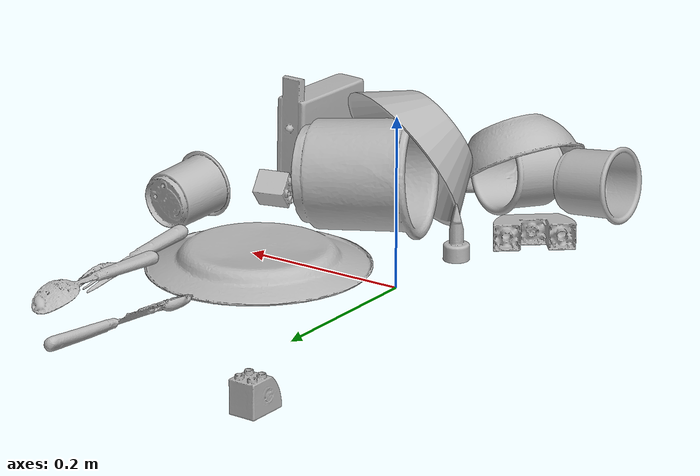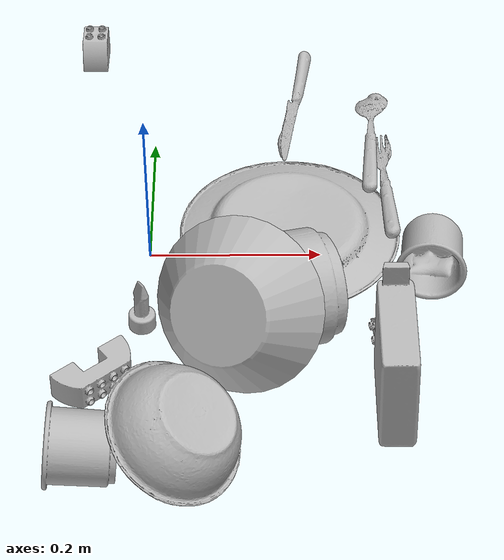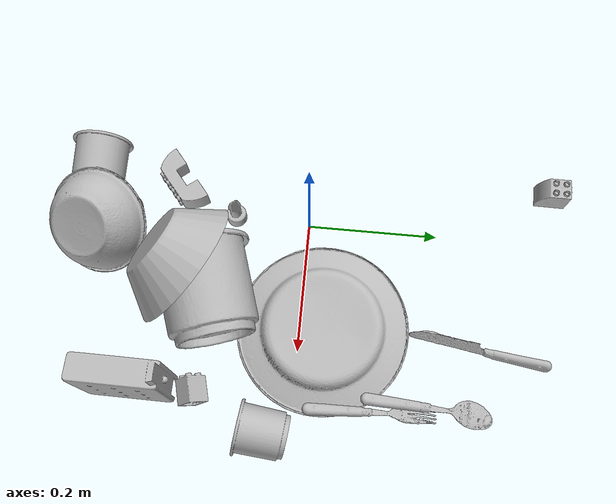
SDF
<sdf version="1.4">
  <world name="default">
    <light name="light1" type="point">
      <pose>0 0 1 0 0 0</pose>
      <diffuse>3 3 3 1</diffuse>
      <specular>3 3 3 1</specular>
    </light>
    <light name="light2" type="point">
      <pose>0 0.5 2 0 0 0</pose>
      <diffuse>1 1 1 1</diffuse>
      <specular>1 1 1 1</specular>
    </light>
    <light name="light3" type="point">
      <pose>0 0.5 2 0 0 0</pose>
      <diffuse>3 3 3 1</diffuse>
      <specular>3 3 3 1</specular>
    </light>
    <scene>
      <ambient>0.7 0.7 0.7</ambient>
    </scene>
    <model name="plate1">
      <link name="link_plate1">
        <collision name="default">
          <geometry>
            <mesh>
              <uri>model://plate/collision_meshes/collision.obj</uri>
              <scale>1.0 1.0 1.0</scale>
            </mesh>
          </geometry>
          <surface>
            <friction>
              <ode>
                <mu>0.5</mu>
                <mu2>0.5</mu2>
              </ode>
            </friction>
          <contact>
        <ode>
            <max_vel>0</max_vel>
            <min_depth>0.0001</min_depth>
            <kp>1e8</kp>
        </ode>
    </contact></surface>
        </collision>
        <visual name="default">
          <geometry>
            <mesh>
              <uri>model://plate/visual_meshes/visual.dae</uri>
              <scale>1.0 1.0 1.0</scale>
            </mesh>
          </geometry>
        </visual>
        <inertial>
          <mass>0.17760059237480164</mass>
          <pose>-0.0006044625188224018 0.0002782586379908025 -0.0010561981471255422 0.0022187804018266454 -0.0032254852757079067 0.45261158451631034</pose>
          <inertia>
            <ixx>0.0008308187</ixx>
            <iyy>0.0008228725</iyy>
            <izz>0.0016249575</izz>
            <ixy>0</ixy>
            <ixz>0</ixz>
            <iyz>0</iyz>
          </inertia>
        </inertial>
      </link>
      <pose>0.16431637108325958 0.03511306270956993 0.013448568992316723 3.141423156525756 -0.003160490038866525 1.1099511652728888</pose>
    </model>
    <model name="cup1">
      <link name="link_cup1">
        <collision name="default">
          <geometry>
            <mesh>
              <uri>model://e_cups/collision_meshes/collision.obj</uri>
              <scale>2.0 2.0 2.0</scale>
            </mesh>
          </geometry>
          <surface>
            <friction>
              <ode>
                <mu>0.5</mu>
                <mu2>0.5</mu2>
              </ode>
            </friction>
          <contact>
        <ode>
            <max_vel>0</max_vel>
            <min_depth>0.0001</min_depth>
            <kp>1e8</kp>
        </ode>
    </contact></surface>
        </collision>
        <visual name="default">
          <geometry>
            <mesh>
              <uri>model://e_cups/visual_meshes/visual.dae</uri>
              <scale>2.0 2.0 2.0</scale>
            </mesh>
          </geometry>
        </visual>
        <inertial>
          <mass>0.744063675403595</mass>
          <pose>0.002271148143336177 0.005759569350630045 -0.007765938527882099 0.6952380949131286 0.08767384491187986 -0.5235246841726229</pose>
          <inertia>
            <ixx>0.0026243117</ixx>
            <iyy>0.0027427815</iyy>
            <izz>0.0025091455</izz>
            <ixy>0</ixy>
            <ixz>0</ixz>
            <iyz>0</iyz>
          </inertia>
        </inertial>
      </link>
      <pose>0.13854487240314484 -0.13508044183254242 0.06976383924484253 -1.4777740038519205 0.4515290538860266 1.93086834832755</pose>
    </model>
    <model name="silverware1">
      <link name="link_silverware1">
        <collision name="default">
          <geometry>
            <mesh>
              <uri>model://knife/collision_meshes/collision.obj</uri>
              <scale>1.0 1.0 1.0</scale>
            </mesh>
          </geometry>
          <surface>
            <friction>
              <ode>
                <mu>0.5</mu>
                <mu2>0.5</mu2>
              </ode>
            </friction>
          <contact>
        <ode>
            <max_vel>0</max_vel>
            <min_depth>0.0001</min_depth>
            <kp>1e8</kp>
        </ode>
    </contact></surface>
        </collision>
        <visual name="default">
          <geometry>
            <mesh>
              <uri>model://knife/visual_meshes/visual.dae</uri>
              <scale>1.0 1.0 1.0</scale>
            </mesh>
          </geometry>
        </visual>
        <inertial>
          <mass>0.01882243901491165</mass>
          <pose>-0.02378525212407112 0.001527512213215232 5.062019408796914e-05 0.07305335090357784 0.017248422780830937 -0.007409828138098005</pose>
          <inertia>
            <ixx>5.342572e-07</ixx>
            <iyy>7.231275e-05</iyy>
            <izz>7.248483e-05</izz>
            <ixy>0</ixy>
            <ixz>0</ixz>
            <iyz>0</iyz>
          </inertia>
        </inertial>
      </link>
      <pose>0.1736525595188141 0.27181676030158997 0.008919142186641693 -0.8985036871043509 0.004168827724276249 -1.7285204668754064</pose>
    </model>
    <model name="silverware2">
      <link name="link_silverware2">
        <collision name="default">
          <geometry>
            <mesh>
              <uri>model://fork/collision_meshes/collision.obj</uri>
              <scale>1.0 1.0 1.0</scale>
            </mesh>
          </geometry>
          <surface>
            <friction>
              <ode>
                <mu>0.5</mu>
                <mu2>0.5</mu2>
              </ode>
            </friction>
          <contact>
        <ode>
            <max_vel>0</max_vel>
            <min_depth>0.0001</min_depth>
            <kp>1e8</kp>
        </ode>
    </contact></surface>
        </collision>
        <visual name="default">
          <geometry>
            <mesh>
              <uri>model://fork/visual_meshes/visual.dae</uri>
              <scale>1.0 1.0 1.0</scale>
            </mesh>
          </geometry>
        </visual>
        <inertial>
          <mass>0.02216319739818573</mass>
          <pose>-0.029570037499070168 0.0004658822435885668 0.0003218860365450382 -0.01355085274048469 -0.010977831838055618 0.014453900749429992</pose>
          <inertia>
            <ixx>7.769453e-07</ixx>
            <iyy>5.7861733e-05</iyy>
            <izz>5.8209254e-05</izz>
            <ixy>0</ixy>
            <ixz>0</ixz>
            <iyz>0</iyz>
          </inertia>
        </inertial>
      </link>
      <pose>0.2813921868801117 0.11387856304645538 0.012325789779424667 2.836494984788449 0.025553960026787555 1.6191060199882688</pose>
    </model>
    <model name="silverware3">
      <link name="link_silverware3">
        <collision name="default">
          <geometry>
            <mesh>
              <uri>model://spoon/collision_meshes/collision.obj</uri>
              <scale>1.0 1.0 1.0</scale>
            </mesh>
          </geometry>
          <surface>
            <friction>
              <ode>
                <mu>0.5</mu>
                <mu2>0.5</mu2>
              </ode>
            </friction>
          <contact>
        <ode>
            <max_vel>0</max_vel>
            <min_depth>0.0001</min_depth>
            <kp>1e8</kp>
        </ode>
    </contact></surface>
        </collision>
        <visual name="default">
          <geometry>
            <mesh>
              <uri>model://spoon/visual_meshes/visual.dae</uri>
              <scale>1.0 1.0 1.0</scale>
            </mesh>
          </geometry>
        </visual>
        <inertial>
          <mass>0.0369713120162487</mass>
          <pose>-0.005526314955204725 -0.001603417214937508 -0.0007271651993505657 0.03521850370393077 -0.03906584809093457 0.006150612862082015</pose>
          <inertia>
            <ixx>2.0564048e-06</ixx>
            <iyy>0.00014067463</iyy>
            <izz>0.00014168874</izz>
            <ixy>0</ixy>
            <ixz>0</ixz>
            <iyz>0</iyz>
          </inertia>
        </inertial>
      </link>
      <pose>0.27057087421417236 0.19771963357925415 0.014178129844367504 2.904101222735792 -0.031680432201341126 1.5153477707205416</pose>
    </model>
    <model name="cup3">
      <link name="link_cup3">
        <collision name="default">
          <geometry>
            <mesh>
              <uri>model://h_cups/collision_meshes/collision.obj</uri>
              <scale>1.0 1.0 1.0</scale>
            </mesh>
          </geometry>
          <surface>
            <friction>
              <ode>
                <mu>0.5</mu>
                <mu2>0.5</mu2>
              </ode>
            </friction>
          <contact>
        <ode>
            <max_vel>0</max_vel>
            <min_depth>0.0001</min_depth>
            <kp>1e8</kp>
        </ode>
    </contact></surface>
        </collision>
        <visual name="default">
          <geometry>
            <mesh>
              <uri>model://h_cups/visual_meshes/visual.dae</uri>
              <scale>1.0 1.0 1.0</scale>
            </mesh>
          </geometry>
        </visual>
        <inertial>
          <mass>0.07650958746671677</mass>
          <pose>-2.7029362172470428e-05 0.0002301867789356038 -0.0018405390437692404 -0.02436239906192228 0.06545228304852578 0.1288505673262376</pose>
          <inertia>
            <ixx>9.880857e-05</ixx>
            <iyy>9.7629454e-05</iyy>
            <izz>0.0001036231</izz>
            <ixy>0</ixy>
            <ixz>0</ixz>
            <iyz>0</iyz>
          </inertia>
        </inertial>
      </link>
      <pose>-0.05812733992934227 -0.33203473687171936 0.0423588864505291 -1.4583507270088045 -0.45937425886642197 1.5284121030329845</pose>
    </model>
    <model name="cup4">
      <link name="link_cup4">
        <collision name="default">
          <geometry>
            <mesh>
              <uri>model://f_cups/collision_meshes/collision.obj</uri>
              <scale>1.0 1.0 1.0</scale>
            </mesh>
          </geometry>
          <surface>
            <friction>
              <ode>
                <mu>0.5</mu>
                <mu2>0.5</mu2>
              </ode>
            </friction>
          <contact>
        <ode>
            <max_vel>0</max_vel>
            <min_depth>0.0001</min_depth>
            <kp>1e8</kp>
        </ode>
    </contact></surface>
        </collision>
        <visual name="default">
          <geometry>
            <mesh>
              <uri>model://f_cups/visual_meshes/visual.dae</uri>
              <scale>1.0 1.0 1.0</scale>
            </mesh>
          </geometry>
        </visual>
        <inertial>
          <mass>0.06643713265657425</mass>
          <pose>-0.003171468386426568 -0.0006240070797502995 -0.003655537962913513 0.7862285241405351 -0.26079358215919657 -0.18237309734404591</pose>
          <inertia>
            <ixx>6.2452695e-05</ixx>
            <iyy>6.551358e-05</iyy>
            <izz>6.820148e-05</izz>
            <ixy>0</ixy>
            <ixz>0</ixz>
            <iyz>0</iyz>
          </inertia>
        </inertial>
      </link>
      <pose>0.3260221779346466 -0.0378173291683197 0.0371880829334259 -0.5415749994637951 -1.4619921783950274 2.0042500892080124</pose>
    </model>
    <model name="cup5">
      <link name="link_cup5">
        <collision name="default">
          <geometry>
            <mesh>
              <uri>model://j_cups/collision_meshes/collision.obj</uri>
              <scale>1.0 1.0 1.0</scale>
            </mesh>
          </geometry>
          <surface>
            <friction>
              <ode>
                <mu>0.5</mu>
                <mu2>0.5</mu2>
              </ode>
            </friction>
          <contact>
        <ode>
            <max_vel>0</max_vel>
            <min_depth>0.0001</min_depth>
            <kp>1e8</kp>
        </ode>
    </contact></surface>
        </collision>
        <visual name="default">
          <geometry>
            <mesh>
              <uri>model://j_cups/visual_meshes/visual.dae</uri>
              <scale>1.0 1.0 1.0</scale>
            </mesh>
          </geometry>
        </visual>
        <inertial>
          <mass>0.12178023159503937</mass>
          <pose>0.0006164865335449576 0.000539897009730339 -0.001347901183180511 0.03030406613159603 0.03757978252187804 0.4386981755119238</pose>
          <inertia>
            <ixx>0.0001788119</ixx>
            <iyy>0.00018067128</iyy>
            <izz>0.00020613305</izz>
            <ixy>0</ixy>
            <ixz>0</ixz>
            <iyz>0</iyz>
          </inertia>
        </inertial>
      </link>
      <pose>0.03287043049931526 -0.30976492166519165 0.047132279723882675 1.3731721253974114 0.9362208810002517 2.595199055432421</pose>
    </model>
    <model name="bowl1">
      <link name="link_bowl1">
        <collision name="default">
          <geometry>
            <mesh>
              <uri>model://bowl/collision_meshes/collision.obj</uri>
              <scale>1.0 1.0 1.0</scale>
            </mesh>
          </geometry>
          <surface>
            <friction>
              <ode>
                <mu>0.5</mu>
                <mu2>0.5</mu2>
              </ode>
            </friction>
          <contact>
        <ode>
            <max_vel>0</max_vel>
            <min_depth>0.0001</min_depth>
            <kp>1e8</kp>
        </ode>
    </contact></surface>
        </collision>
        <visual name="default">
          <geometry>
            <mesh>
              <uri>model://bowl/visual_meshes/visual.dae</uri>
              <scale>1.0 1.0 1.0</scale>
            </mesh>
          </geometry>
        </visual>
        <inertial>
          <mass>0.07745425403118134</mass>
          <pose>0.0002044533030129969 -0.001030205748975277 -0.0008042643312364817 -0.015764104528614948 0.014546761750555465 0.7140386532433999</pose>
          <inertia>
            <ixx>0.00017791858</ixx>
            <iyy>0.0001739432</iyy>
            <izz>0.00029932024</izz>
            <ixy>0</ixy>
            <ixz>0</ixz>
            <iyz>0</iyz>
          </inertia>
        </inertial>
      </link>
      <pose>0.05038591846823692 -0.3227769136428833 0.06738759577274323 -2.811106931225474 -0.5260713359953911 2.1411027954075292</pose>
    </model>
    <model name="bowl2">
      <link name="link_bowl2">
        <collision name="default">
          <geometry>
            <mesh>
              <uri>model://bowl_a/collision_meshes/collision.obj</uri>
              <scale>1.0 1.0 1.0</scale>
            </mesh>
          </geometry>
          <surface>
            <friction>
              <ode>
                <mu>0.5</mu>
                <mu2>0.5</mu2>
              </ode>
            </friction>
          <contact>
        <ode>
            <max_vel>0</max_vel>
            <min_depth>0.0001</min_depth>
            <kp>1e8</kp>
        </ode>
    </contact></surface>
        </collision>
        <visual name="default">
          <geometry>
            <mesh>
              <uri>model://bowl_a/visual_meshes/visual.dae</uri>
              <scale>1.0 1.0 1.0</scale>
            </mesh>
          </geometry>
        </visual>
        <inertial>
          <mass>0.3088552951812744</mass>
          <pose>0.00027867488097399473 4.730938235297799e-05 -0.0013765291078016162 -0.0009805400563029818 -0.0010938222386440513 -0.19123616665791646</pose>
          <inertia>
            <ixx>0.0008793254</ixx>
            <iyy>0.00088472397</iyy>
            <izz>0.0015639137</izz>
            <ixy>0</ixy>
            <ixz>0</ixz>
            <iyz>0</iyz>
          </inertia>
        </inertial>
      </link>
      <pose>0.09458613395690918 -0.19178073108196259 0.10010004043579102 -2.1354960873734434 0.3628963755008252 -0.6713024044274517</pose>
    </model>
    <model name="toy1">
      <link name="link_toy1">
        <collision name="default">
          <geometry>
            <mesh>
              <uri>model://nine_hole_peg_test/collision_meshes/collision.obj</uri>
              <scale>1.0 1.0 1.0</scale>
            </mesh>
          </geometry>
          <surface>
            <friction>
              <ode>
                <mu>0.5</mu>
                <mu2>0.5</mu2>
              </ode>
            </friction>
          <contact>
        <ode>
            <max_vel>0</max_vel>
            <min_depth>0.0001</min_depth>
            <kp>1e8</kp>
        </ode>
    </contact></surface>
        </collision>
        <visual name="default">
          <geometry>
            <mesh>
              <uri>model://nine_hole_peg_test/visual_meshes/visual.dae</uri>
              <scale>1.0 1.0 1.0</scale>
            </mesh>
          </geometry>
        </visual>
        <inertial>
          <mass>0.6997236609458923</mass>
          <pose>-0.004617386497557163 -0.009647613391280174 2.6460686058271676e-05 -0.0014666798725883532 0.0007194177661592421 -0.634241755630697</pose>
          <inertia>
            <ixx>0.001094133</ixx>
            <iyy>0.0010215805</iyy>
            <izz>0.0019172435</izz>
            <ixy>0</ixy>
            <ixz>0</ixz>
            <iyz>0</iyz>
          </inertia>
        </inertial>
      </link>
      <pose>0.27189359068870544 -0.23047970235347748 0.07397235929965973 1.5550039919679073 -0.009798611638308459 1.5611472247695246</pose>
    </model>
    <model name="toy2">
      <link name="link_toy2">
        <collision name="default">
          <geometry>
            <mesh>
              <uri>model://b_lego_duplo/collision_meshes/collision.obj</uri>
              <scale>1.0 1.0 1.0</scale>
            </mesh>
          </geometry>
          <surface>
            <friction>
              <ode>
                <mu>0.5</mu>
                <mu2>0.5</mu2>
              </ode>
            </friction>
          <contact>
        <ode>
            <max_vel>0</max_vel>
            <min_depth>0.0001</min_depth>
            <kp>1e8</kp>
        </ode>
    </contact></surface>
        </collision>
        <visual name="default">
          <geometry>
            <mesh>
              <uri>model://b_lego_duplo/visual_meshes/visual.dae</uri>
              <scale>1.0 1.0 1.0</scale>
            </mesh>
          </geometry>
        </visual>
        <inertial>
          <mass>0.036269694566726685</mass>
          <pose>-0.00011053054186049849 -9.152130587608553e-06 0.0019294297089800239 -0.03749458994465856 -0.026354447033388347 0.4518895757464325</pose>
          <inertia>
            <ixx>7.4228647e-06</ixx>
            <iyy>7.4727645e-06</iyy>
            <izz>6.6135317e-06</izz>
            <ixy>0</ixy>
            <ixz>0</ixz>
            <iyz>0</iyz>
          </inertia>
        </inertial>
      </link>
      <pose>0.2736605703830719 -0.1462438702583313 0.02225244604051113 1.58115478137214 0.8106597045441725 -1.3114474708008936</pose>
    </model>
    <model name="toy3">
      <link name="link_toy3">
        <collision name="default">
          <geometry>
            <mesh>
              <uri>model://e_lego_duplo/collision_meshes/collision.obj</uri>
              <scale>1.0 1.0 1.0</scale>
            </mesh>
          </geometry>
          <surface>
            <friction>
              <ode>
                <mu>0.5</mu>
                <mu2>0.5</mu2>
              </ode>
            </friction>
          <contact>
        <ode>
            <max_vel>0</max_vel>
            <min_depth>0.0001</min_depth>
            <kp>1e8</kp>
        </ode>
    </contact></surface>
        </collision>
        <visual name="default">
          <geometry>
            <mesh>
              <uri>model://e_lego_duplo/visual_meshes/visual.dae</uri>
              <scale>1.0 1.0 1.0</scale>
            </mesh>
          </geometry>
        </visual>
        <inertial>
          <mass>0.09994293004274368</mass>
          <pose>0.0003256055060774088 0.00023485402925871313 0.0019521453650668263 -0.0225675226805428 -6.825163911406593e-05 -0.00762515763197677</pose>
          <inertia>
            <ixx>2.08414e-05</ixx>
            <iyy>8.553845e-05</iyy>
            <izz>8.329725e-05</izz>
            <ixy>0</ixy>
            <ixz>0</ixz>
            <iyz>0</iyz>
          </inertia>
        </inertial>
      </link>
      <pose>-0.04933944344520569 -0.20744523406028748 0.016517745330929756 -1.5715842413459569 0.005901756968201555 -2.4569940813674673</pose>
    </model>
    <model name="toy4">
      <link name="link_toy4">
        <collision name="default">
          <geometry>
            <mesh>
              <uri>model://d_lego_duplo/collision_meshes/collision.obj</uri>
              <scale>1.0 1.0 1.0</scale>
            </mesh>
          </geometry>
          <surface>
            <friction>
              <ode>
                <mu>0.5</mu>
                <mu2>0.5</mu2>
              </ode>
            </friction>
          <contact>
        <ode>
            <max_vel>0</max_vel>
            <min_depth>0.0001</min_depth>
            <kp>1e8</kp>
        </ode>
    </contact></surface>
        </collision>
        <visual name="default">
          <geometry>
            <mesh>
              <uri>model://d_lego_duplo/visual_meshes/visual.dae</uri>
              <scale>1.0 1.0 1.0</scale>
            </mesh>
          </geometry>
        </visual>
        <inertial>
          <mass>0.04219998046755791</mass>
          <pose>0.0028305635787546635 0.00016366135969292372 0.0008589813369326293 0.08010947906167593 -0.38355230128712514 0.001029700717632254</pose>
          <inertia>
            <ixx>8.169298e-06</ixx>
            <iyy>1.1594444e-05</iyy>
            <izz>1.1181217e-05</izz>
            <ixy>0</ixy>
            <ixz>0</ixz>
            <iyz>0</iyz>
          </inertia>
        </inertial>
      </link>
      <pose>-0.08361540734767914 0.37562549114227295 0.021740013733506203 -4.0989559410512387e-07 7.716679777460102e-07 1.5628228776559896</pose>
    </model>
    <model name="toy5">
      <link name="link_toy5">
        <collision name="default">
          <geometry>
            <mesh>
              <uri>model://e_toy_airplane/collision_meshes/collision.obj</uri>
              <scale>1.0 1.0 1.0</scale>
            </mesh>
          </geometry>
          <surface>
            <friction>
              <ode>
                <mu>0.5</mu>
                <mu2>0.5</mu2>
              </ode>
            </friction>
          <contact>
        <ode>
            <max_vel>0</max_vel>
            <min_depth>0.0001</min_depth>
            <kp>1e8</kp>
        </ode>
    </contact></surface>
        </collision>
        <visual name="default">
          <geometry>
            <mesh>
              <uri>model://e_toy_airplane/visual_meshes/visual.dae</uri>
              <scale>1.0 1.0 1.0</scale>
            </mesh>
          </geometry>
        </visual>
        <inertial>
          <mass>0.01083444245159626</mass>
          <pose>0.00011740464105969295 -2.2482989152194932e-05 -0.011187201365828514 0.005518500665833105 0.009228299677984822 0.1504140594290799</pose>
          <inertia>
            <ixx>3.3067965e-06</ixx>
            <iyy>3.2729695e-06</iyy>
            <izz>9.938221e-07</izz>
            <ixy>0</ixy>
            <ixz>0</ixz>
            <iyz>0</iyz>
          </inertia>
        </inertial>
      </link>
      <pose>-0.004673665855079889 -0.11514343321323395 0.033211980015039444 4.2414785916457345e-05 -0.0001407237644020762 0.5238369340636667</pose>
    </model>
  <physics type="ode">
      <max_contacts>50</max_contacts>
      <ode>
        <solver>
          <type>quick</type>
          <iters>75</iters>
        </solver>
        <constraints>
          <contact_max_correcting_vel>0</contact_max_correcting_vel>
          <contact_surface_layer>0</contact_surface_layer>
        </constraints>
      </ode>
    </physics></world>
</sdf>
